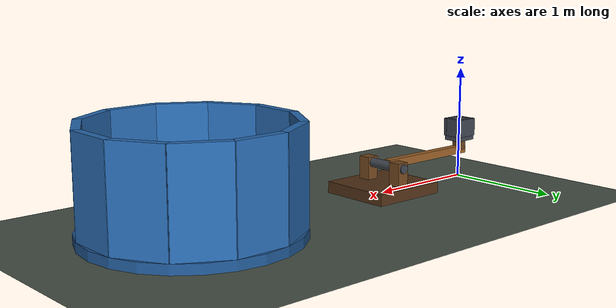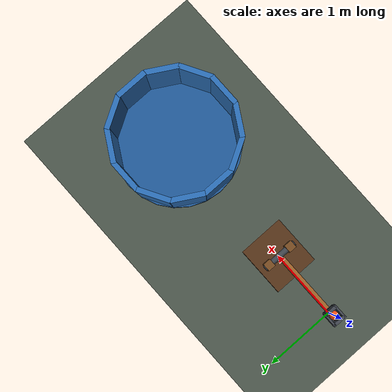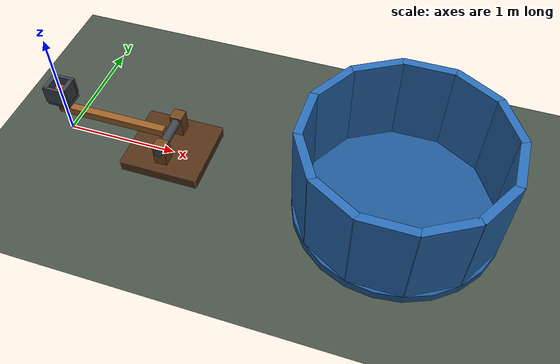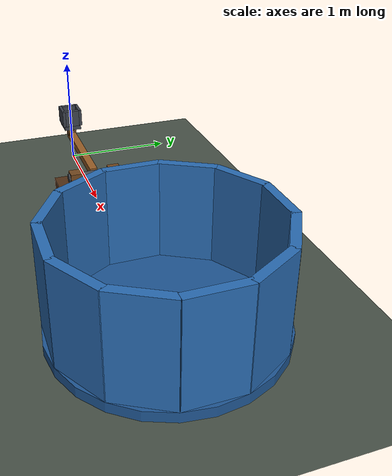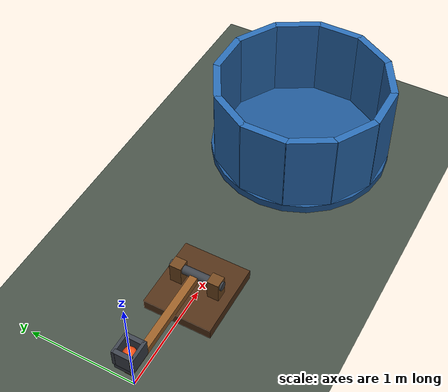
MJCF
<mujoco model="spring_catapult_into_bucket">
  <compiler angle="radian" autolimits="true"/>
  <option timestep="0.002" gravity="0 0 -9.81" integrator="implicitfast" solver="Newton" iterations="100"/>
  <size njmax="2000" nconmax="200"/>

  <visual>
    <global azimuth="135" elevation="-20"/>
    <headlight ambient="0.35 0.35 0.35" diffuse="0.7 0.7 0.7" specular="0.2 0.2 0.2"/>
  </visual>

  <worldbody>
    <light name="overhead" pos="1.5 -2 5" dir="0 0 -1"/>
    <camera name="overview" pos="1.5 -6 3" xyaxes="1 0 0 0 0.4 0.916515"/>

    <geom name="floor" type="plane" pos="0 0 0" size="6 4 0.1" rgba="0.28 0.32 0.28 1" friction="1 0.03 0.02" condim="6" solref="0.015 1"/>

    <body name="catapult_base" pos="1 0 0">
      <geom name="catapult_base_plate" type="box" pos="0 0 0.05" size="0.35 0.32 0.05" rgba="0.32 0.19 0.09 1"/>
      <geom name="catapult_left_support" type="box" pos="0 -0.18 0.175" size="0.055 0.055 0.125" rgba="0.45 0.28 0.12 1"/>
      <geom name="catapult_right_support" type="box" pos="0 0.18 0.175" size="0.055 0.055 0.125" rgba="0.45 0.28 0.12 1"/>
      <geom name="catapult_axle" type="cylinder" pos="0 0 0.25" quat="0.707106781 0.707106781 0 0" size="0.04 0.25" rgba="0.25 0.27 0.3 1"/>

      <body name="catapult_arm" pos="0 0 0.25">
        <inertial pos="-0.45 0 0.03" mass="0.45" diaginertia="0.004 0.08 0.08"/>
        <joint name="catapult_hinge" type="hinge" axis="0 1 0" range="0 0.785398163" stiffness="6.9" springref="1.25" damping="0.06" armature="0" solreflimit="0.004 1" solimplimit="0.999 0.999 0.001"/>
        <!-- The beam ends 10 mm clear of the axle's radial surface. -->
        <geom name="catapult_arm_beam" type="box" pos="-0.55 0 0" size="0.5 0.035 0.035" rgba="0.6 0.37 0.15 1" friction="0.02 0.001 0.0001" priority="1" condim="3"/>
        <geom name="catapult_cup_stem" type="box" pos="-1 0 0.065" size="0.04 0.04 0.065" rgba="0.4 0.25 0.12 1" friction="0.02 0.001 0.0001" priority="1" condim="3"/>
        <geom name="catapult_cup_floor" type="box" pos="-1 0 0.11" size="0.102 0.082 0.02" rgba="0.24 0.26 0.3 1" friction="0.02 0.001 0.0001" priority="1" condim="3" solref="0.004 1"/>
        <geom name="catapult_cup_outer_wall" type="box" pos="-1.081 0 0.21" size="0.02 0.082 0.08" rgba="0.24 0.26 0.3 1" friction="0.02 0.001 0.0001" priority="1" condim="3" solref="0.004 1"/>
        <geom name="catapult_cup_inner_wall" type="box" pos="-0.919 0 0.21" size="0.02 0.082 0.08" rgba="0.24 0.26 0.3 1" friction="0.02 0.001 0.0001" priority="1" condim="3" solref="0.004 1"/>
        <geom name="catapult_cup_left_wall" type="box" pos="-1 -0.082 0.21" size="0.102 0.014 0.08" rgba="0.24 0.26 0.3 1" friction="0.02 0.001 0.0001" priority="1" condim="3" solref="0.004 1"/>
        <geom name="catapult_cup_right_wall" type="box" pos="-1 0.082 0.21" size="0.102 0.014 0.08" rgba="0.24 0.26 0.3 1" friction="0.02 0.001 0.0001" priority="1" condim="3" solref="0.004 1"/>
      </body>
    </body>

    <!-- The bucket centre is exactly 3 m from the initial ball centre. -->
    <!-- A cylinder forms the bottom; twelve overlapping boxes form the open walls. -->
    <body name="bucket" pos="3 0 0.44">
      <geom name="bucket_bottom" type="cylinder" pos="0 0 -0.4" size="0.865 0.04" rgba="0.12 0.34 0.58 1" friction="1 0.04 0.03" condim="6" solref="0.015 1"/>
      <geom name="bucket_wall_00" type="box" pos="0.8 0 0.04" size="0.035 0.22 0.4" euler="0 0 0" rgba="0.16 0.42 0.7 1" friction="1 0.04 0.03" condim="6" solref="0.015 1"/>
      <geom name="bucket_wall_01" type="box" pos="0.692820323 0.4 0.04" size="0.035 0.22 0.4" euler="0 0 0.523598776" rgba="0.16 0.42 0.7 1" friction="1 0.04 0.03" condim="6" solref="0.015 1"/>
      <geom name="bucket_wall_02" type="box" pos="0.4 0.692820323 0.04" size="0.035 0.22 0.4" euler="0 0 1.047197551" rgba="0.16 0.42 0.7 1" friction="1 0.04 0.03" condim="6" solref="0.015 1"/>
      <geom name="bucket_wall_03" type="box" pos="0 0.8 0.04" size="0.035 0.22 0.4" euler="0 0 1.570796327" rgba="0.16 0.42 0.7 1" friction="1 0.04 0.03" condim="6" solref="0.015 1"/>
      <geom name="bucket_wall_04" type="box" pos="-0.4 0.692820323 0.04" size="0.035 0.22 0.4" euler="0 0 2.094395102" rgba="0.16 0.42 0.7 1" friction="1 0.04 0.03" condim="6" solref="0.015 1"/>
      <geom name="bucket_wall_05" type="box" pos="-0.692820323 0.4 0.04" size="0.035 0.22 0.4" euler="0 0 2.617993878" rgba="0.16 0.42 0.7 1" friction="1 0.04 0.03" condim="6" solref="0.015 1"/>
      <geom name="bucket_wall_06" type="box" pos="-0.8 0 0.04" size="0.035 0.22 0.4" euler="0 0 3.141592654" rgba="0.16 0.42 0.7 1" friction="1 0.04 0.03" condim="6" solref="0.015 1"/>
      <geom name="bucket_wall_07" type="box" pos="-0.692820323 -0.4 0.04" size="0.035 0.22 0.4" euler="0 0 3.665191429" rgba="0.16 0.42 0.7 1" friction="1 0.04 0.03" condim="6" solref="0.015 1"/>
      <geom name="bucket_wall_08" type="box" pos="-0.4 -0.692820323 0.04" size="0.035 0.22 0.4" euler="0 0 4.188790205" rgba="0.16 0.42 0.7 1" friction="1 0.04 0.03" condim="6" solref="0.015 1"/>
      <geom name="bucket_wall_09" type="box" pos="0 -0.8 0.04" size="0.035 0.22 0.4" euler="0 0 4.71238898" rgba="0.16 0.42 0.7 1" friction="1 0.04 0.03" condim="6" solref="0.015 1"/>
      <geom name="bucket_wall_10" type="box" pos="0.4 -0.692820323 0.04" size="0.035 0.22 0.4" euler="0 0 5.235987756" rgba="0.16 0.42 0.7 1" friction="1 0.04 0.03" condim="6" solref="0.015 1"/>
      <geom name="bucket_wall_11" type="box" pos="0.692820323 -0.4 0.04" size="0.035 0.22 0.4" euler="0 0 5.759586532" rgba="0.16 0.42 0.7 1" friction="1 0.04 0.03" condim="6" solref="0.015 1"/>
    </body>

    <body name="ball" pos="0 0 0.44">
      <freejoint name="ball_free"/>
      <geom name="ball" type="sphere" size="0.06" mass="0.1" rgba="0.95 0.3 0.08 1" friction="1 0.04 0.03" condim="6" solref="0.008 1"/>
    </body>
  </worldbody>

  <keyframe>
    <key name="start" qpos="0 0 0 0.44 1 0 0 0" qvel="0 0 0 0 0 0 0"/>
  </keyframe>
</mujoco>
